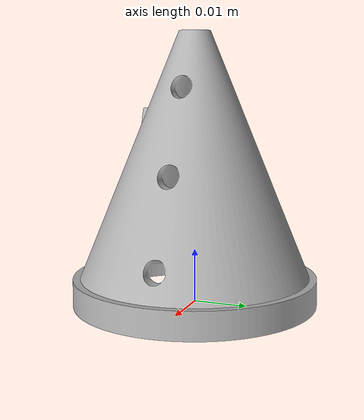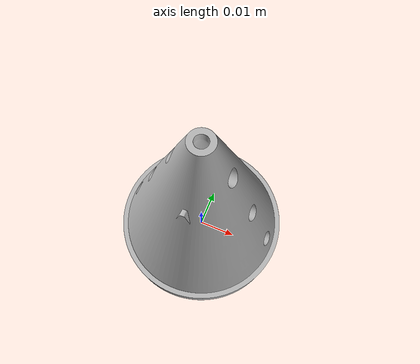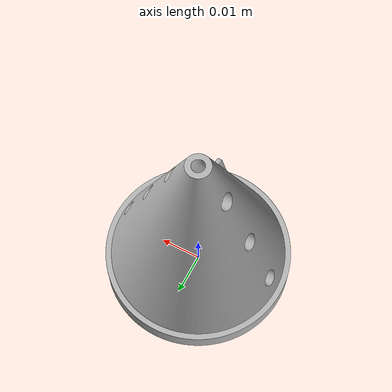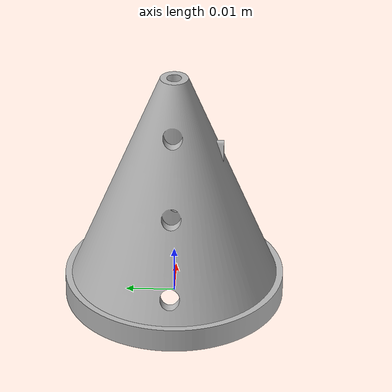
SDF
<?xml version="1.0"?>
<sdf version="1.6">
  <model name="cone">
    <link name="cone_link">
      <pose>0 0 0 0 3.14159 0</pose>
      <inertial>
        <pose>0 0 0 0 0 0</pose>
        <mass>0.007</mass>
        <inertia>
          <ixx>0.000004</ixx>
          <ixy>0</ixy>
          <ixz>0</ixz>
          <iyy>0.000004</iyy>
          <iyz>0</iyz>
          <izz>0.000002</izz>
        </inertia>
      </inertial>
      <collision name="collision_base">

        <geometry>
          <mesh>
            <uri>model://cone/meshes/cone.stl</uri>
          </mesh>
        </geometry>
      </collision>
      <visual name="visual">
        <geometry>
          <mesh>
            <uri>model://cone/meshes/cone.stl</uri>
          </mesh>
        </geometry>
      </visual>
    </link>
  </model>
</sdf>
